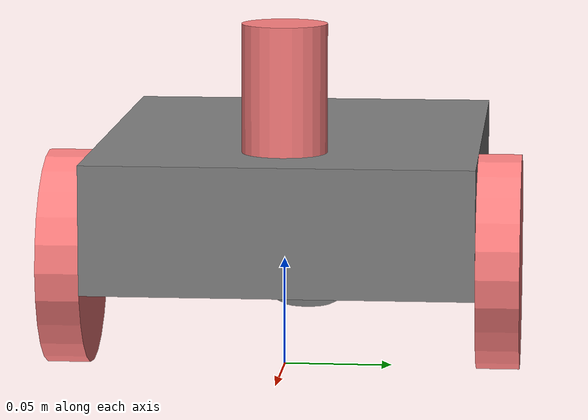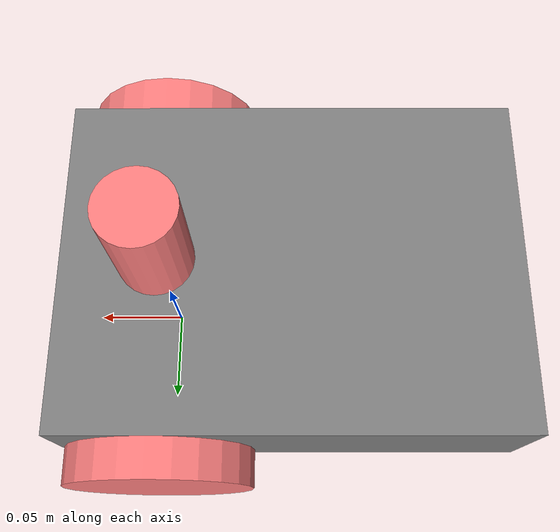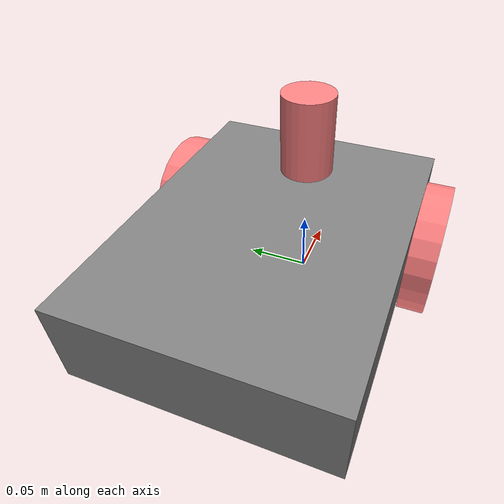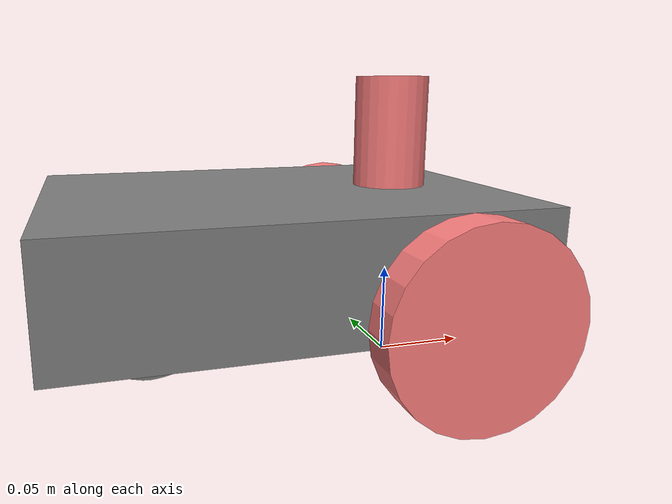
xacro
<?xml version="1.0"?>
<robot name="dtw_robot" xmlns:xacro="http://ros.org/wiki/xacro">
    <xacro:include filename="$(find dtw_robot)/xacro/laser_macro.xacro"/>
    <xacro:include filename="$(find dtw_robot)/xacro/imu_macro.xacro"/>
    <xacro:include filename="$(find dtw_robot)/xacro/move_macro.xacro"/>

    <link name="base_link"/>

    <xacro:body_macro parent="base_link"/>
    <xacro:wheel_macro prefix="left_wheel" parent="base_link" xyz="0 0.1 0.05"/>
    <xacro:wheel_macro prefix="right_wheel" parent="base_link" xyz="0 -0.1 0.05"/>
    <xacro:laser_macro prefix="front_laser" parent="base_link" xyz="0 0 0.13"/>

    <gazebo>
        <plugin name="differential_drive_controller" filename="libgazebo_ros_diff_drive.so">
            <commandTopic>cmd_vel</commandTopic>
            <odometryTopic>odom</odometryTopic>
            <odometryFrame>odom</odometryFrame>
            <odometrySource>world</odometrySource>
            <publishOdomTF>true</publishOdomTF>
            <robotBaseFrame>base_link</robotBaseFrame>
            <publishWheelTF>false</publishWheelTF>
            <publishTf>true</publishTf>
            <publishWheelJointState>true</publishWheelJointState>
            <legacyMode>false</legacyMode>
            <updateRate>30</updateRate>
            <leftJoint>left_wheel_joint</leftJoint>
            <rightJoint>right_wheel_joint</rightJoint>
            <wheelSeparation>0.2</wheelSeparation>
            <wheelDiameter>0.05</wheelDiameter>
            <wheelAcceleration>1</wheelAcceleration>
            <wheelTorque>10</wheelTorque>
            <rosDebugLevel>na</rosDebugLevel>
        </plugin>
    </gazebo>

</robot>

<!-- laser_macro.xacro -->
<robot name="dtw_robot" xmlns:xacro="http://ros.org/wiki/xacro">
  <xacro:macro name="laser_macro" params="parent prefix xyz">
    <joint name="${prefix}_joint" type="fixed">
      <parent link="${parent}"/>
      <child  link="${prefix}_link"/>
      <origin xyz="${xyz}" rpy="0 0 0"/>
    </joint>
    <link name="${prefix}_link">
      <visual>
        <origin xyz="0 0 0" rpy="0 0 0" />
        <geometry>
          <cylinder radius="0.02" length="0.06" />
        </geometry>
        <material name="red" />
      </visual>
      <collision>
        <origin xyz="0 0 0" rpy="0 0 0"/>
        <geometry>
          <cylinder radius="0.02" length="0.06" />
        </geometry>
      </collision>
    </link>
    <gazebo reference="${prefix}_link">
      <material>Gazebo/Red</material>
      <sensor type="ray" name="${prefix}">
        <pose>0 0 0 0 0 0</pose>
        <visualize>false</visualize>
        <update_rate>40</update_rate>
        <ray>
          <scan>
            <horizontal>
              <samples>400</samples>
              <resolution>1</resolution>
              <min_angle>${radians(-150)}</min_angle>
              <max_angle>${radians( 150)}</max_angle>
            </horizontal>
          </scan>
          <range>
            <min>0.10</min>
            <max>20.0</max>
            <resolution>0.01</resolution>
          </range>
          <noise>
            <type>gaussian</type>
            <mean>0.0</mean>
            <stddev>0.01</stddev>
          </noise>
        </ray>
        <plugin name="gazebo_ros_lidar_controller" filename="libgazebo_ros_laser.so">
          <topicName>scan</topicName>
          <frameName>${prefix}_link</frameName>
        </plugin>
      </sensor>
    </gazebo>
  </xacro:macro>
</robot>

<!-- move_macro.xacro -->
<robot name="dtw_robot" xmlns:xacro="http://ros.org/wiki/xacro">
    <material name="gray">
        <color rgba="0.5 0.5 0.5 1.0"/>
    </material>
    <material name="red">
        <color rgba="1.0 0.5 0.5 1.0"/>
    </material>

    <xacro:macro name="wheel_macro" params="parent prefix xyz">
        <joint name="${prefix}_joint" type="continuous">
            <origin xyz="${xyz}" rpy="${radians(-90)} 0 0"/>
            <parent link="${parent}"/>
            <child link="${prefix}_link"/>
            <axis xyz="0 0 1"/>
            <limit velocity="12.0" effort="0.4"/>
            <dynamics damping="0.1"/>
        </joint>
        <transmission name="${prefix}_trans" type="SimpleTransmission">
            <type>transmission_interface/SimpleTransmission</type>
            <actuator name="${prefix}_motor">
                <hardwareInterface>hardware_interface/VelocityJointInterface</hardwareInterface>
                <mechanicalReduction>1</mechanicalReduction>
            </actuator>
            <joint name="${prefix}_joint">
                <hardwareInterface>hardware_interface/VelocityJointInterface</hardwareInterface>
            </joint>
        </transmission>
        <link name="${prefix}_link">
            <inertial>
                <origin xyz="0 0 0" rpy="0 0 0"/>
                <mass value="0.1"/>
                <inertia ixx="0.0001" ixy="0.0" ixz="0.0" iyy="0.0001" iyz="0.0" izz="0.0001"/>
            </inertial>
            <visual>
                <geometry>
                    <cylinder radius="0.05" length="0.02"/>
                </geometry>
                <material name="red"/>
            </visual>
            <collision>
                <geometry>
                    <cylinder radius="0.05" length="0.02"/>
                </geometry>
            </collision>
        </link>
        <gazebo reference="${prefix}_link">
            <material>Gazebo/Red</material>
            <mu1 value="2.5"/>
            <mu2 value="2.5"/>
            <kp value="50000"/>
            <kd value="10"/>
        </gazebo>
    </xacro:macro>

    <xacro:macro name="body_macro" params="parent">
        <joint name="body_joint" type="fixed">
            <parent link="base_link"/>
            <child link="body_link"/>
            <origin xyz="-0.07 0 0.07" rpy="0 0 0"/>
        </joint>
        <link name="body_link">
            <inertial>
                <origin xyz="0 0 0" rpy="0 0 0"/>
                <mass value="1.0"/>
                <inertia ixx="0.001" ixy="0.0" ixz="0.0" iyy="0.001" iyz="0.0" izz="0.001"/>
            </inertial>
            <visual>
                <origin xyz="0 0 0" rpy="0 0 0"/>
                <geometry>
                    <box size="0.24 0.18 0.06"/>
                </geometry>
                <material name="gray"/>
            </visual>
            <collision>
                <origin xyz="0 0 0" rpy="0 0 0"/>
                <geometry>
                    <box size="0.24 0.178 0.06"/>
                </geometry>
            </collision>
        </link>
        <gazebo reference="body_link">
            <material>Gazebo/Gray</material>
        </gazebo>

        <joint name="ball_joint" type="fixed">
            <parent link="base_link"/>
            <child link="ball_link"/>
            <origin xyz="-0.14 0 0.04" rpy="0 0 0"/>
        </joint>
        <link name="ball_link">
            <visual>
                <origin xyz="0 0 0" rpy="0 0 0"/>
                <geometry>
                    <sphere radius="0.04"/>
                </geometry>
                <material name="gray"/>
            </visual>
            <collision>
                <origin xyz="0 0 0" rpy="0 0 0"/>
                <geometry>
                    <sphere radius="0.04"/>
                </geometry>
                <material name="gray"/>
            </collision>
        </link>
        <gazebo reference="ball_link">
            <material>Gazebo/Gray</material>
            <mu1 value="0.5"/>
            <mu2 value="0.5"/>
        </gazebo>
    </xacro:macro>
</robot>
